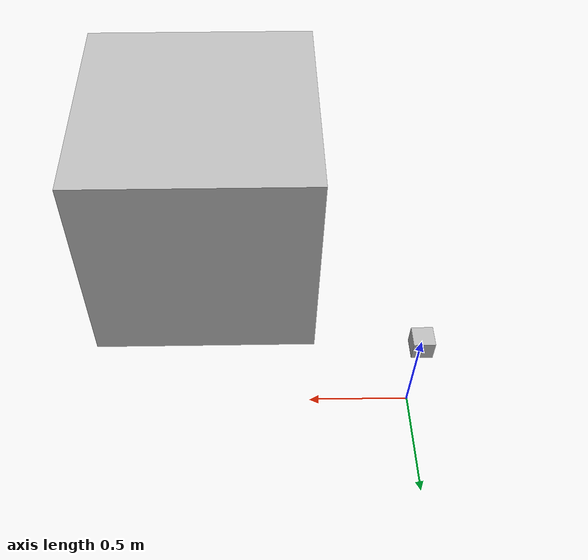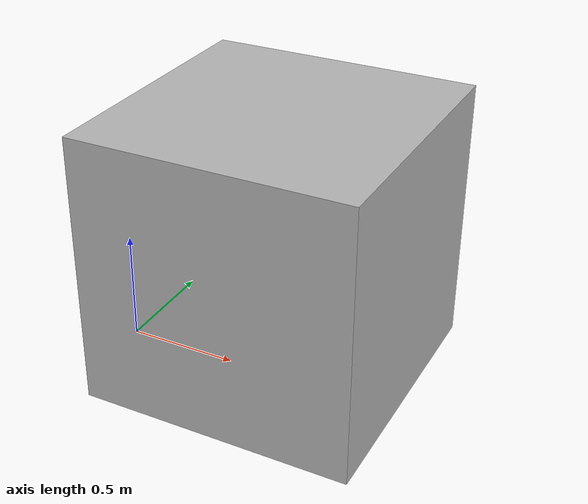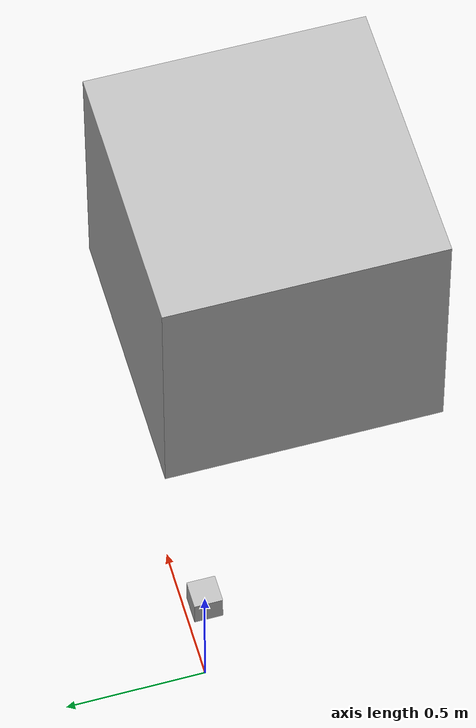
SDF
<?xml version="1.0" ?>
<sdf version="1.6">
  <world name="default">
    <include>
      <uri>model://sun</uri>
    </include>

    <model name="l16bit_camera">
      <static>true</static>
      <pose>0.0 0.0 0.5 0 0 0</pose>
      <link name="link">
        <pose>0.0 0.0 0.0 0 0 0</pose>
        <inertial>
          <mass>0.1</mass>
        </inertial>
        <collision name="collision">
          <geometry>
            <box>
              <size>0.1 0.1 0.1</size>
            </box>
          </geometry>
        </collision>
        <visual name="visual">
          <geometry>
            <box>
              <size>0.1 0.1 0.1</size>
            </box>
          </geometry>
        </visual>
        <sensor name="l16bit_camera_sensor" type="camera">
          <camera>
            <horizontal_fov>0.7854</horizontal_fov>
            <image>
              <width>320</width>
              <height>240</height>
              <format>L16</format>
            </image>
            <clip>
              <near>0.1</near>
              <far>100</far>
            </clip>
          </camera>
          <always_on>1</always_on>
          <update_rate>10</update_rate>
          <visualize>false</visualize>
        </sensor>
      </link>
    </model>

    <model name="rgb16_camera">
      <static>true</static>
      <pose>0.0 0.0 0.5 0 0 0</pose>
      <link name="link">
        <pose>0.0 0.0 0.0 0 0 0</pose>
        <inertial>
          <mass>0.1</mass>
        </inertial>
        <collision name="collision">
          <geometry>
            <box>
              <size>0.1 0.1 0.1</size>
            </box>
          </geometry>
        </collision>
        <visual name="visual">
          <geometry>
            <box>
              <size>0.1 0.1 0.1</size>
            </box>
          </geometry>
        </visual>
        <sensor name="rgb16bit_camera_sensor" type="camera">
          <camera>
            <horizontal_fov>0.7854</horizontal_fov>
            <image>
              <width>320</width>
              <height>240</height>
              <format>RGB_UINT16</format>
            </image>
            <clip>
              <near>0.1</near>
              <far>100</far>
            </clip>
          </camera>
          <always_on>1</always_on>
          <update_rate>10</update_rate>
          <visualize>false</visualize>
        </sensor>
      </link>
    </model>

    <model name="box">
      <static>true</static>
      <pose>1.0 -0.5 1.0 0 0 0</pose>
      <link name="link">
        <collision name="collision">
          <geometry>
            <box>
              <size>1 1 1</size>
            </box>
          </geometry>
        </collision>
        <visual name="visual">
          <geometry>
            <box>
              <size>1 1 1</size>
            </box>
          </geometry>
        </visual>
      </link>
    </model>

  </world>
</sdf>
